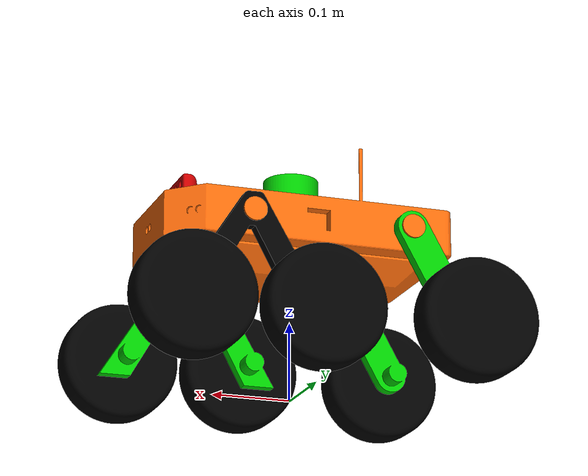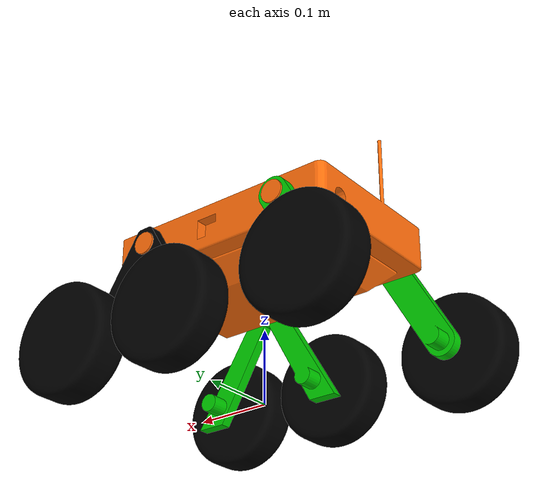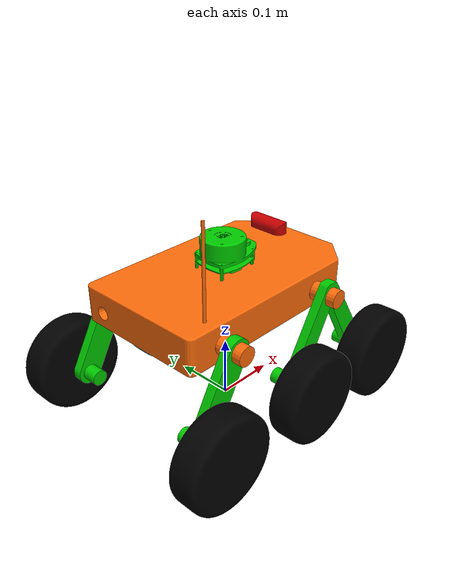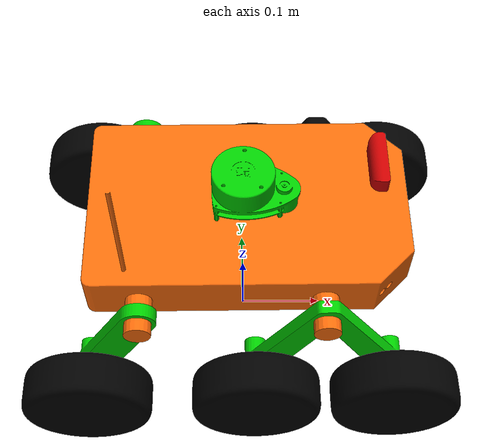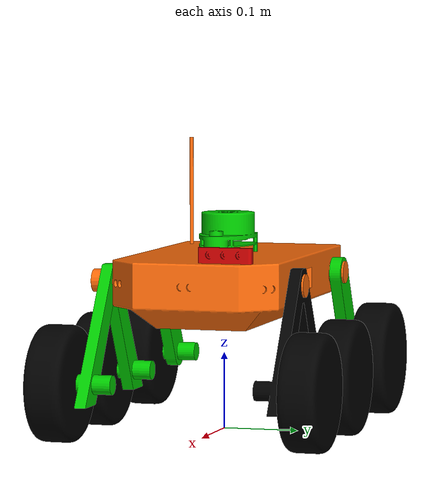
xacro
<?xml version="1.0" ?>
<robot name="rover" xmlns:xacro="http://www.ros.org/wiki/xacro">

<xacro:include filename="$(find rover_description)/urdf/materials.xacro" />
<xacro:include filename="$(find rover_description)/urdf/rover.trans" />
<xacro:include filename="$(find rover_description)/urdf/rover.gazebo" />
<link name="base_link">
  <inertial>
    <origin rpy="0 0 0" xyz="0.0007953579759249263 0.00301706160533866 0.1929078480073617"/>
    <mass value="46.34238244743093"/>
    <inertia ixx="0.197231" ixy="-0.002112" ixz="-0.001377" iyy="0.46903" iyz="-0.000454" izz="0.614476"/>
  </inertial>
  <visual>
    <origin rpy="0 0 0" xyz="0 0 0"/>
    <geometry>
      <mesh filename="package://rover_description/meshes/base_link.stl" scale="0.001 0.001 0.001"/>
    </geometry>
    <material name="orange"/>
  </visual>
  <collision>
    <origin rpy="0 0 0" xyz="0 0 0"/>
    <geometry>
      <mesh filename="package://rover_description/meshes/base_link.stl" scale="0.001 0.001 0.001"/>
    </geometry>
  </collision>
</link>

<link name="bogieL_1">
  <inertial>
    <origin rpy="0 0 0" xyz="-0.04258483763749371 -0.001418471753633993 -0.07684005264855909"/>
    <mass value="0.8627805609730256"/>
    <inertia ixx="0.001595" ixy="-3.1e-05" ixz="-0.000792" iyy="0.002074" iyz="-5.5e-05" izz="0.000605"/>
  </inertial>
  <visual>
    <origin rpy="0 0 0" xyz="0.115512 -0.124858 -0.199197"/>
    <geometry>
      <mesh filename="package://rover_description/meshes/bogieL_1.stl" scale="0.001 0.001 0.001"/>
    </geometry>
    <material name="green"/>
  </visual>
  <collision>
    <origin rpy="0 0 0" xyz="0.115512 -0.124858 -0.199197"/>
    <geometry>
      <mesh filename="package://rover_description/meshes/bogieL_1.stl" scale="0.001 0.001 0.001"/>
    </geometry>
  </collision>
</link>

<link name="bogieR_1">
  <inertial>
    <origin rpy="0 0 0" xyz="-0.04258483763754503 0.0014187176789327016 -0.07684005264855873"/>
    <mass value="0.8627805609730251"/>
    <inertia ixx="0.001595" ixy="3.1e-05" ixz="-0.000792" iyy="0.002074" iyz="5.5e-05" izz="0.000605"/>
  </inertial>
  <visual>
    <origin rpy="0 0 0" xyz="0.115512 0.127007 -0.199197"/>
    <geometry>
      <mesh filename="package://rover_description/meshes/bogieR_1.stl" scale="0.001 0.001 0.001"/>
    </geometry>
    <material name="green"/>
  </visual>
  <collision>
    <origin rpy="0 0 0" xyz="0.115512 0.127007 -0.199197"/>
    <geometry>
      <mesh filename="package://rover_description/meshes/bogieR_1.stl" scale="0.001 0.001 0.001"/>
    </geometry>
  </collision>
</link>

<link name="camera_1">
  <inertial>
    <origin rpy="0 0 0" xyz="-0.04031689970809438 0.009875788727428801 -0.16213953546240567"/>
    <mass value="0.18583696532425"/>
    <inertia ixx="7.7e-05" ixy="0.0" ixz="-1e-06" iyy="1.1e-05" iyz="0.0" izz="7.6e-05"/>
  </inertial>
  <visual>
    <origin rpy="0 0 0" xyz="-0.195928 -0.039082 -0.402981"/>
    <geometry>
      <mesh filename="package://rover_description/meshes/camera_1.stl" scale="0.001 0.001 0.001"/>
    </geometry>
    <material name="red"/>
  </visual>
  <collision>
    <origin rpy="0 0 0" xyz="-0.195928 -0.039082 -0.402981"/>
    <geometry>
      <mesh filename="package://rover_description/meshes/camera_1.stl" scale="0.001 0.001 0.001"/>
    </geometry>
  </collision>
</link>

<link name="rockerR_1">
  <inertial>
    <origin rpy="0 0 0" xyz="0.003960524891233941 0.0015703956534752483 -0.08641799810063396"/>
    <mass value="1.5589155328998232"/>
    <inertia ixx="0.003162" ixy="-3e-06" ixz="8.3e-05" iyy="0.009515" iyz="9.4e-05" izz="0.006596"/>
  </inertial>
  <visual>
    <origin rpy="0 0 0" xyz="-0.089044 0.127007 -0.199197"/>
    <geometry>
      <mesh filename="package://rover_description/meshes/rockerR_1.stl" scale="0.001 0.001 0.001"/>
    </geometry>
    <material name="green"/>
  </visual>
  <collision>
    <origin rpy="0 0 0" xyz="-0.089044 0.127007 -0.199197"/>
    <geometry>
      <mesh filename="package://rover_description/meshes/rockerR_1.stl" scale="0.001 0.001 0.001"/>
    </geometry>
  </collision>
</link>

<link name="Lidar_1">
  <inertial>
    <origin rpy="0 0 0" xyz="-0.010497448896311809 -0.034398476440228 -0.1403482040363242"/>
    <mass value="1.3392997077576563"/>
    <inertia ixx="0.00062" ixy="2.2e-05" ixz="0.000159" iyy="0.000966" iyz="-1.3e-05" izz="0.001105"/>
  </inertial>
  <visual>
    <origin rpy="0 0 0" xyz="-0.017127 -0.039082 -0.402981"/>
    <geometry>
      <mesh filename="package://rover_description/meshes/Lidar_1.stl" scale="0.001 0.001 0.001"/>
    </geometry>
    <material name="green"/>
  </visual>
  <collision>
    <origin rpy="0 0 0" xyz="-0.017127 -0.039082 -0.402981"/>
    <geometry>
      <mesh filename="package://rover_description/meshes/Lidar_1.stl" scale="0.001 0.001 0.001"/>
    </geometry>
  </collision>
</link>

<link name="RW1_1">
  <inertial>
    <origin rpy="0 0 0" xyz="0.00013853617102332905 -0.02500018066582338 4.902446378574066e-07"/>
    <mass value="0.10360940183775207"/>
    <inertia ixx="0.000164" ixy="-0.0" ixz="-0.0" iyy="0.000285" iyz="0.0" izz="0.000164"/>
  </inertial>
  <visual>
    <origin rpy="0 0 0" xyz="-0.175369 0.140616 -0.074589"/>
    <geometry>
      <mesh filename="package://rover_description/meshes/RW1_1.stl" scale="0.001 0.001 0.001"/>
    </geometry>
    <material name="black"/>
  </visual>
  <collision>
    <origin rpy="0 0 0" xyz="-0.175369 0.140616 -0.074589"/>
    <geometry>
      <mesh filename="package://rover_description/meshes/RW1_1.stl" scale="0.001 0.001 0.001"/>
    </geometry>
  </collision>
</link>

<link name="castorR_1">
  <inertial>
    <origin rpy="0 0 0" xyz="0.00013862695011349763 -0.02500018066582327 4.90244624881675e-07"/>
    <mass value="0.10360940183775126"/>
    <inertia ixx="0.000164" ixy="-0.0" ixz="-0.0" iyy="0.000285" iyz="0.0" izz="0.000164"/>
  </inertial>
  <visual>
    <origin rpy="0 0 0" xyz="-0.013435 0.140616 -0.074589"/>
    <geometry>
      <mesh filename="package://rover_description/meshes/castorR_1.stl" scale="0.001 0.001 0.001"/>
    </geometry>
    <material name="black"/>
  </visual>
  <collision>
    <origin rpy="0 0 0" xyz="-0.013435 0.140616 -0.074589"/>
    <geometry>
      <mesh filename="package://rover_description/meshes/castorR_1.stl" scale="0.001 0.001 0.001"/>
    </geometry>
  </collision>
</link>

<link name="RW2_1">
  <inertial>
    <origin rpy="0 0 0" xyz="0.0001392266976711909 -0.02500018066582324 -3.426740136092121e-07"/>
    <mass value="0.1036094018377507"/>
    <inertia ixx="0.000164" ixy="-0.0" ixz="-0.0" iyy="0.000285" iyz="0.0" izz="0.000164"/>
  </inertial>
  <visual>
    <origin rpy="0 0 0" xyz="0.183082 0.140616 -0.077275"/>
    <geometry>
      <mesh filename="package://rover_description/meshes/RW2_1.stl" scale="0.001 0.001 0.001"/>
    </geometry>
    <material name="black"/>
  </visual>
  <collision>
    <origin rpy="0 0 0" xyz="0.183082 0.140616 -0.077275"/>
    <geometry>
      <mesh filename="package://rover_description/meshes/RW2_1.stl" scale="0.001 0.001 0.001"/>
    </geometry>
  </collision>
</link>

<link name="rockerL_1">
  <inertial>
    <origin rpy="0 0 0" xyz="0.003960524891134964 -0.0015701497281764704 -0.08641799810063432"/>
    <mass value="1.5589155328998294"/>
    <inertia ixx="0.003162" ixy="3e-06" ixz="8.3e-05" iyy="0.009515" iyz="-9.4e-05" izz="0.006596"/>
  </inertial>
  <visual>
    <origin rpy="0 0 0" xyz="-0.089044 -0.124858 -0.199197"/>
    <geometry>
      <mesh filename="package://rover_description/meshes/rockerL_1.stl" scale="0.001 0.001 0.001"/>
    </geometry>
    <material name="black"/>
  </visual>
  <collision>
    <origin rpy="0 0 0" xyz="-0.089044 -0.124858 -0.199197"/>
    <geometry>
      <mesh filename="package://rover_description/meshes/rockerL_1.stl" scale="0.001 0.001 0.001"/>
    </geometry>
  </collision>
</link>

<link name="LW1_1">
  <inertial>
    <origin rpy="0 0 0" xyz="0.00013853617102349558 0.025000426591776426 4.902446377463843e-07"/>
    <mass value="0.1036094018377987"/>
    <inertia ixx="0.000164" ixy="-0.0" ixz="-0.0" iyy="0.000285" iyz="0.0" izz="0.000164"/>
  </inertial>
  <visual>
    <origin rpy="0 0 0" xyz="-0.175369 -0.138467 -0.074589"/>
    <geometry>
      <mesh filename="package://rover_description/meshes/LW1_1.stl" scale="0.001 0.001 0.001"/>
    </geometry>
    <material name="black"/>
  </visual>
  <collision>
    <origin rpy="0 0 0" xyz="-0.175369 -0.138467 -0.074589"/>
    <geometry>
      <mesh filename="package://rover_description/meshes/LW1_1.stl" scale="0.001 0.001 0.001"/>
    </geometry>
  </collision>
</link>

<link name="castorL_1">
  <inertial>
    <origin rpy="0 0 0" xyz="0.00013862695011370406 0.025000426591776537 4.902446248955528e-07"/>
    <mass value="0.10360940183779824"/>
    <inertia ixx="0.000164" ixy="-0.0" ixz="-0.0" iyy="0.000285" iyz="0.0" izz="0.000164"/>
  </inertial>
  <visual>
    <origin rpy="0 0 0" xyz="-0.013435 -0.138467 -0.074589"/>
    <geometry>
      <mesh filename="package://rover_description/meshes/castorL_1.stl" scale="0.001 0.001 0.001"/>
    </geometry>
    <material name="black"/>
  </visual>
  <collision>
    <origin rpy="0 0 0" xyz="-0.013435 -0.138467 -0.074589"/>
    <geometry>
      <mesh filename="package://rover_description/meshes/castorL_1.stl" scale="0.001 0.001 0.001"/>
    </geometry>
  </collision>
</link>

<link name="LW2__1">
  <inertial>
    <origin rpy="0 0 0" xyz="0.0001392266976714407 0.025000426591776537 -3.4267401347043425e-07"/>
    <mass value="0.10360940183779754"/>
    <inertia ixx="0.000164" ixy="-0.0" ixz="-0.0" iyy="0.000285" iyz="-0.0" izz="0.000164"/>
  </inertial>
  <visual>
    <origin rpy="0 0 0" xyz="0.183082 -0.138467 -0.077275"/>
    <geometry>
      <mesh filename="package://rover_description/meshes/LW2__1.stl" scale="0.001 0.001 0.001"/>
    </geometry>
    <material name="black"/>
  </visual>
  <collision>
    <origin rpy="0 0 0" xyz="0.183082 -0.138467 -0.077275"/>
    <geometry>
      <mesh filename="package://rover_description/meshes/LW2__1.stl" scale="0.001 0.001 0.001"/>
    </geometry>
  </collision>
</link>

<joint name="shaft1" type="fixed">
  <origin rpy="0 0 0" xyz="-0.115512 0.124858 0.199197"/>
  <parent link="base_link"/>
  <child link="bogieL_1"/>
</joint>

<joint name="shaft2" type="fixed">
  <origin rpy="0 0 0" xyz="-0.115512 -0.127007 0.199197"/>
  <parent link="base_link"/>
  <child link="bogieR_1"/>
</joint>

<joint name="camera" type="fixed">
  <origin rpy="0 0 0" xyz="0.195928 0.039082 0.402981"/>
  <parent link="base_link"/>
  <child link="camera_1"/>
</joint>

<joint name="rockerR" type="revolute">
  <origin rpy="0 0 0" xyz="0.089044 -0.127007 0.199197"/>
  <parent link="base_link"/>
  <child link="rockerR_1"/>
  <axis xyz="0.0 1.0 0.0"/>
  <limit effort="100" lower="-0.261799" upper="0.523599" velocity="100"/>
</joint>

<joint name="Lidar" type="fixed">
  <origin rpy="0 0 0" xyz="0.017127 0.039082 0.402981"/>
  <parent link="base_link"/>
  <child link="Lidar_1"/>
</joint>

<joint name="RW1" type="continuous">
  <origin rpy="0 0 0" xyz="0.086325 -0.013609 -0.124608"/>
  <parent link="rockerR_1"/>
  <child link="RW1_1"/>
  <axis xyz="0.0 1.0 0.0"/>
</joint>

<joint name="CW1" type="continuous">
  <origin rpy="0 0 0" xyz="-0.075609 -0.013609 -0.124608"/>
  <parent link="rockerR_1"/>
  <child link="castorR_1"/>
  <axis xyz="0.0 1.0 0.0"/>
</joint>

<joint name="RW2" type="continuous">
  <origin rpy="0 0 0" xyz="-0.06757 -0.013609 -0.121922"/>
  <parent link="bogieR_1"/>
  <child link="RW2_1"/>
  <axis xyz="0.0 1.0 0.0"/>
</joint>

<joint name="rockerL" type="revolute">
  <origin rpy="0 0 0" xyz="0.089044 0.124858 0.199197"/>
  <parent link="base_link"/>
  <child link="rockerL_1"/>
  <axis xyz="0.0 1.0 0.0"/>
  <limit effort="100" lower="-0.523599" upper="0.523599" velocity="100"/>
</joint>

<joint name="LW1" type="continuous">
  <origin rpy="0 0 0" xyz="0.086325 0.013609 -0.124608"/>
  <parent link="rockerL_1"/>
  <child link="LW1_1"/>
  <axis xyz="0.0 1.0 0.0"/>
</joint>

<joint name="CW2" type="continuous">
  <origin rpy="0 0 0" xyz="-0.075609 0.013609 -0.124608"/>
  <parent link="rockerL_1"/>
  <child link="castorL_1"/>
  <axis xyz="0.0 1.0 0.0"/>
</joint>

<joint name="LW2" type="continuous">
  <origin rpy="0 0 0" xyz="-0.06757 0.013609 -0.121922"/>
  <parent link="bogieL_1"/>
  <child link="LW2__1"/>
  <axis xyz="0.0 1.0 0.0"/>
</joint>

</robot>

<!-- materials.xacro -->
<robot name="rover" xmlns:xacro="http://www.ros.org/wiki/xacro" >

<material name="silver">
    <color rgba="0.700 0.700 0.700 1.000"/>
  </material>

  <material name="black">
    <color rgba="0.0 0.0 0.0 1.0"/>
  </material>

  <material name="blue">
    <color rgba="0.0 0.0 0.8 1.0"/>
  </material>

  <material name="green">
    <color rgba="0.0 0.8 0.0 1.0"/>
  </material>

  <material name="grey">
    <color rgba="0.2 0.2 0.2 1.0"/>
  </material>

  <material name="orange">
    <color rgba="${255/255} ${108/255} ${10/255} 1.0"/>
  </material>

  <material name="brown">
    <color rgba="${222/255} ${207/255} ${195/255} 1.0"/>
  </material>

  <material name="yellow">
    <color rgba="${0/255} ${180/255} ${180/255} 1.0"/>
  </material>

  <material name="red">
    <color rgba="0.8 0.0 0.0 1.0"/>
  </material>

  <material name="white">
    <color rgba="1.0 1.0 1.0 1.0"/>
  </material>

</robot>

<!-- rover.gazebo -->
<robot name="rover" xmlns:xacro="http://www.ros.org/wiki/xacro" >

<xacro:property name="bogie_color" value="Gazebo/ZincYellow" />
<xacro:property name="wheel_color" value="Gazebo/FlatBlack" />
<xacro:property name="body_color" value="Gazebo/Blue" />

<xacro:property name="camera_color" value="Gazebo/DarkGrey" />

<gazebo>
  <plugin filename="libgazebo_ros_control.so" name="control"/>
</gazebo>
<gazebo reference="base_link">
  <material>${body_color}</material>
  <mu1>0.2</mu1>
  <mu2>0.2</mu2>
  <selfCollide>true</selfCollide>
  <gravity>true</gravity>
</gazebo>

<gazebo reference="bogieL_1">
  <material>${bogie_color}</material>
  <mu1>0.2</mu1>
  <mu2>0.2</mu2>
  <selfCollide>true</selfCollide>
</gazebo>

<gazebo reference="bogieR_1">
  <material>${bogie_color}</material>
  <mu1>0.2</mu1>
  <mu2>0.2</mu2>
  <selfCollide>true</selfCollide>
</gazebo>

<gazebo reference="camera_1">
  <material>${camera_color}</material>
  <mu1>0.2</mu1>
  <mu2>0.2</mu2>
  <selfCollide>true</selfCollide>
</gazebo>

<gazebo reference="rockerR_1">
  <material>${bogie_color}</material>
  <mu1>0.2</mu1>
  <mu2>0.2</mu2>
  <selfCollide>true</selfCollide>
</gazebo>

<gazebo reference="Lidar_1">

  <mu1>0.2</mu1>
  <mu2>0.2</mu2>
  <selfCollide>true</selfCollide>
</gazebo>

<gazebo reference="RW1_1">
  <material>${wheel_color}</material>
  <mu1>130</mu1>
  <mu2>130</mu2>
  <selfCollide>true</selfCollide>
</gazebo>

<gazebo reference="castorR_1">
  <material>${wheel_color}</material>
  <mu1>130</mu1>
  <mu2>130</mu2>
  <selfCollide>true</selfCollide>
</gazebo>

<gazebo reference="RW2_1">
  <material>${wheel_color}</material>
  <mu1>130</mu1>
  <mu2>130</mu2>
  <selfCollide>true</selfCollide>
</gazebo>

<gazebo reference="rockerL_1">
  <material>${bogie_color}</material>
  <mu1>0.2</mu1>
  <mu2>0.2</mu2>
  <selfCollide>true</selfCollide>
</gazebo>

<gazebo reference="LW1_1">
  <material>${wheel_color}</material>
  <mu1>130</mu1>
  <mu2>130</mu2>
  <selfCollide>true</selfCollide>
</gazebo>

<gazebo reference="castorL_1">
  <material>${wheel_color}</material>
  <mu1>130</mu1>
  <mu2>130</mu2>
  <selfCollide>true</selfCollide>
</gazebo>

<gazebo reference="LW2__1">
  <material>${wheel_color}</material>
  <mu1>130</mu1>
  <mu2>130</mu2>
  <selfCollide>true</selfCollide>
</gazebo>
<gazebo>
  <plugin name="skid_steer_drive_controller" filename="libgazebo_ros_skid_steer_drive.so">
    <updateRate>100.0</updateRate>
    <robotNamespace>/</robotNamespace>
    <leftFrontJoint>LW1</leftFrontJoint>
    <rightFrontJoint>RW1</rightFrontJoint>
    <leftRearJoint>LW2</leftRearJoint>
    <rightRearJoint>RW2</rightRearJoint>
    <wheelSeparation>0.350</wheelSeparation>
    <wheelDiameter>0.100</wheelDiameter>
    <wheelAcceleration>0.3</wheelAcceleration>
    <robotBaseFrame>base_link</robotBaseFrame>
    <torque>10</torque>
    <commandTopic>cmd_vel</commandTopic>
    <broadcastTF>true</broadcastTF>
    <odometryTopic>odom</odometryTopic>
    <odometryFrame>odom</odometryFrame>
    <publishOdom>true</publishOdom>
    <covariance_x>0.001</covariance_x>
    <covariance_y>0.001</covariance_y>
    <covariance_yaw>0.001</covariance_yaw>

  </plugin>
</gazebo>
<gazebo reference="Lidar_1">
    <material>Gazebo/FlatBlack</material>
    <sensor type="ray" name="RPLIDAR">
      <pose>0 0 0 0 0 0</pose>
      <visualize>False</visualize>
      <update_rate>5</update_rate>
      <ray>
        <scan>
          <horizontal>
            <samples>720</samples>
            <resolution>1</resolution>
            <min_angle>-3.14159</min_angle>
            <max_angle>3.14159</max_angle>
          </horizontal>
        </scan>
        <range>
          <min>0.2</min>
          <max>10.0</max>
          <resolution>0.01</resolution>
        </range>
        <noise>
          <type>gaussian</type>
          <mean>0.0</mean>
          <stddev>0.01</stddev>
        </noise>
      </ray>
      <plugin name="gazebo_ros_head_hokuyo_controller" filename="libgazebo_ros_laser.so">
        <topicName>scan</topicName>
        <frameName>Lidar_1</frameName>
      </plugin>
    </sensor>
  </gazebo>

  <gazebo reference="camera_1">
    <sensor type="camera" name="Pi Camera">
      <always_on>true</always_on>
      <visualize>False</visualize>
      <camera>
          <horizontal_fov>1.085595</horizontal_fov>
          <image>
              <width>750</width>
              <height>500</height>
              <format>R8G8B8</format>
          </image>
          <clip>
              <near>0.03</near>
              <far>100</far>
          </clip>
      </camera>
      <plugin name="camera_controller" filename="libgazebo_ros_camera.so">
        <alwaysOn>true</alwaysOn>
        <updateRate>30.0</updateRate>
        <cameraName>camera</cameraName>
        <frameName>camera_1</frameName>
        <imageTopicName>rgb/image_raw</imageTopicName>
        <cameraInfoTopicName>rgb/camera_info</cameraInfoTopicName>
        <hackBaseline>0.07</hackBaseline>
        <distortionK1>0.0</distortionK1>
        <distortionK2>0.0</distortionK2>
        <distortionK3>0.0</distortionK3>
        <distortionT1>0.0</distortionT1>
        <distortionT2>0.0</distortionT2>
      </plugin>
    </sensor>
  </gazebo>
  <gazebo>
    <plugin name="imu_plugin" filename="libgazebo_ros_imu.so">
      <alwaysOn>true</alwaysOn>
      <bodyName>base_link</bodyName>
      <topicName>imu</topicName>
      <serviceName>imu_service</serviceName>
      <gaussianNoise>0.0</gaussianNoise>
      <updateRate>20.0</updateRate>
    </plugin>
  </gazebo>
  <gazebo>
    <plugin name="gazebo_ros_gps" filename="libhector_gazebo_ros_gps.so">
      <updateRate>4.0</updateRate>
      <bodyName>base_link</bodyName>
      <frameid>map</frameid>
      <topicName>/gps/fix</topicName>

      <velocityTopicName>/gps/fix_velocity</velocityTopicName>
      <offset>0 0 0</offset>
      <drift>0.001 0.001 0.001</drift>
      <gaussianNoise>0.05 0.05 0.05</gaussianNoise>
      <velocityDrift>0.001 0.001 0.001</velocityDrift>
      <velocityGaussianNoise>0.5 0.5 0.5</velocityGaussianNoise>
    </plugin>
  </gazebo>

</robot>
